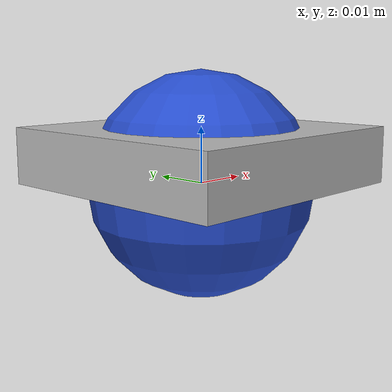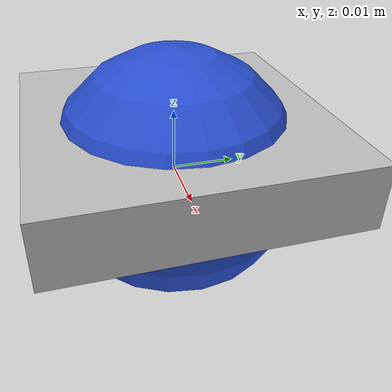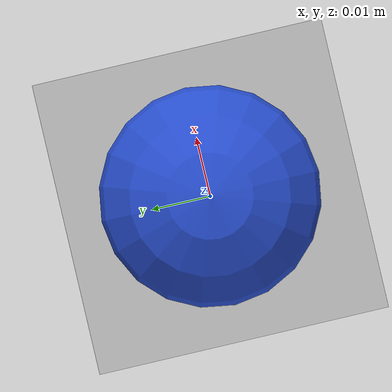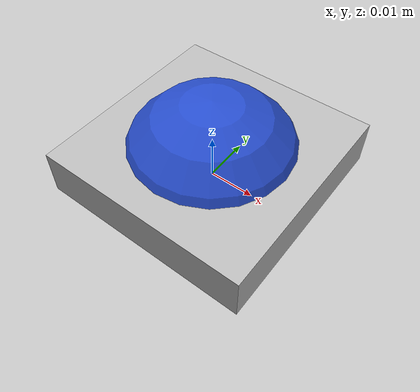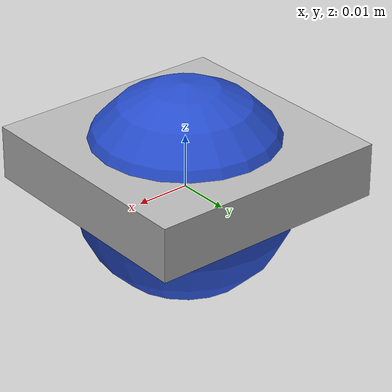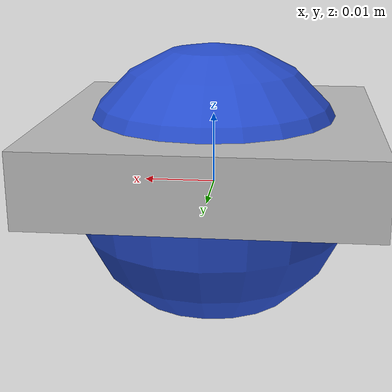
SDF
<sdf version='1.7'>
  <model name='Checkerboard_L02'>

    <include>
      <uri>model://Plane_Base_Model</uri>
    </include>

    <link name='Plane_Pattern'>

      <visual name='Pattern_Visual'>
        <cast_shadows>0</cast_shadows>
        <pose>0 0 0.005 0 0 0</pose>
        <geometry>
          <box>
            <size>4 4 0.01</size>
          </box>
        </geometry>
        <material>
        <script>
            <uri>model://Checkerboard_L02/Surface_Texture/Surface.material</uri>
            <name>Surface_Mat</name>
        </script>
        </material>

      </visual>

    </link>

    <joint name='Surface_Pattern_Joint' type='fixed'>
      <parent>Plane_Base_Model::Surface_Link</parent>
      <child>Plane_Pattern</child>
    </joint>

    <static>0</static>
  <allow_auto_disable>1</allow_auto_disable>
  </model>
</sdf>

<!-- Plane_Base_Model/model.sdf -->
<sdf version='1.7'>
  <model name='Plane_Base_Model'>
    <static>0</static>
    <link name='Surface_Link'>
      <pose>0 0 0 0 0 0</pose>
      <inertial>
        <inertia>
          <ixx>1000</ixx>
          <ixy>0</ixy>
          <ixz>0</ixz>
          <iyy>1000</iyy>
          <iyz>0</iyz>
          <izz>1000</izz>
        </inertia>
        <mass>1</mass>
        <pose>0 0 0 0 0 0</pose>
      </inertial>
      <self_collide>0</self_collide>
      <gravity>0</gravity>

      <visual name='Surface_Center'>
        <cast_shadows>0</cast_shadows>
        <pose>0 0 0 0 0 0</pose>
        <geometry>
          <sphere>
            <radius>0.02</radius>
          </sphere>
        </geometry>
        <material>
          <script>
            <name>Gazebo/Blue</name>
            <uri>file://media/materials/scripts/gazebo.material</uri>
          </script>
          <shader type='pixel'>
            <normal_map>__default__</normal_map>
          </shader>
        </material>
      </visual>
      <collision name='Surface_Collision'>
        <max_contacts>10</max_contacts>
        <pose>0 0 0.025 0 0 0</pose>
        <geometry>
          <box>
            <size>10 2 0.05</size>
          </box>
        </geometry>
      </collision>
    </link>

    <plugin name='Landing_Surface_Pose_Plugin' filename='libLanding_Surface_Pose_Plugin.so'>
      <jointName>Landing_Surface_Joint</jointName>
      <topicName>/ENV/Surface_ForceTorque_Sensor</topicName>
    </plugin>

    <allow_auto_disable>false</allow_auto_disable>
  </model>
</sdf>
